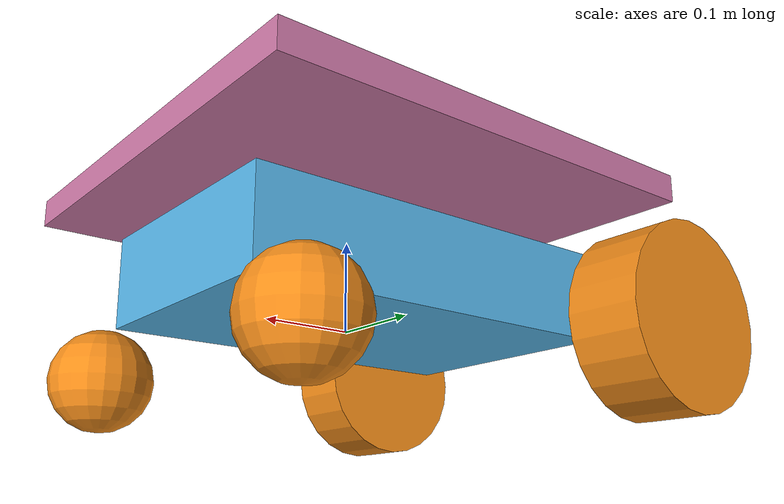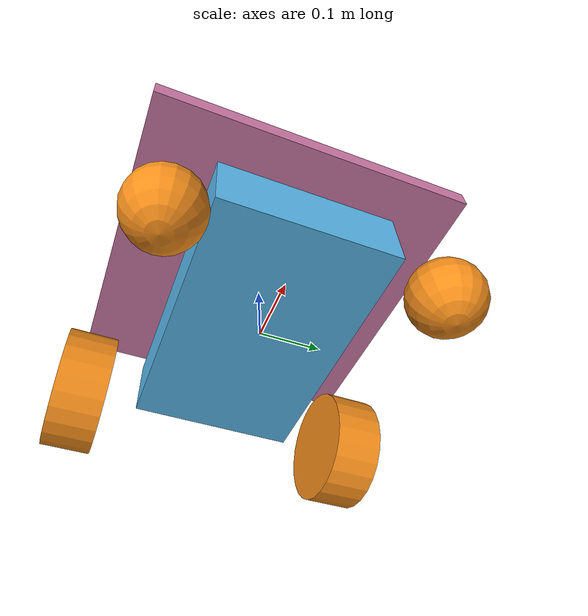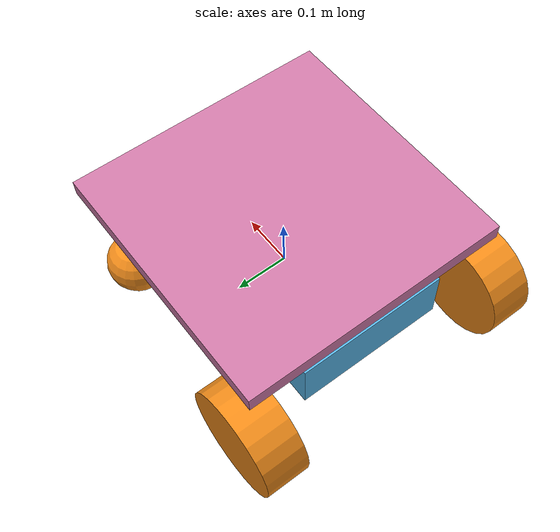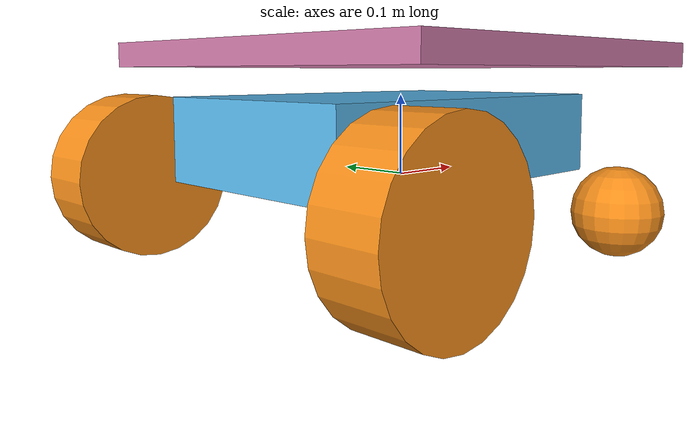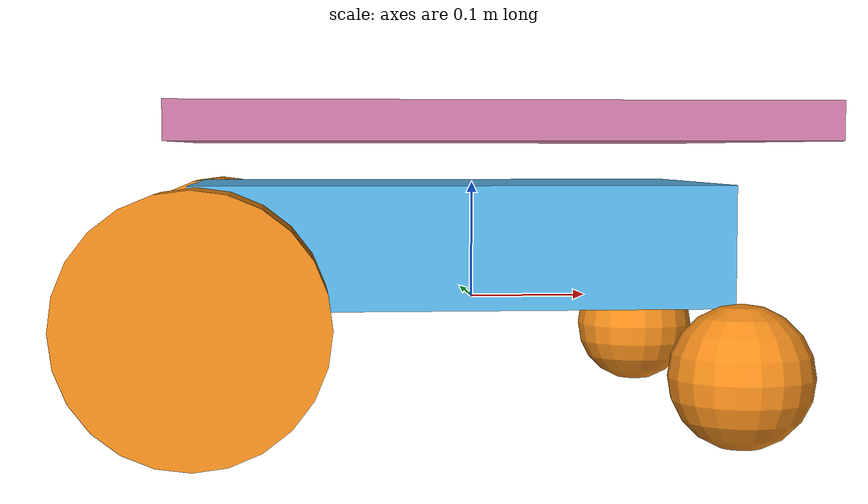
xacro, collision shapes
<?xml version="1.0" encoding="UTF-8"?>
<robot name="base_rover" xmlns:xacro="http://ros.org/wiki/xacro">
	<!--URDF uses SI Units: meters, radians and kilograms-->

	<!-- common constants -->
	<!--xacro:include filename="$(find rover_description)/urdf/common_properties.xacro"/-->

	<!-- add wheel xacro platform include files -->
	<xacro:include filename="$(find rover_description)/urdf/wheel.urdf.xacro"/>
	<xacro:include filename="$(find rover_description)/urdf/caster.urdf.xacro"/>
	<xacro:include filename="$(find rover_description)/urdf/ar_tag.urdf.xacro"/>

	<!-- Base -->
	<link name="base_footprint"/>

	<joint name="base_joint" type="fixed">
 		<parent link="base_footprint"/>
	   	<child link="base_cart_link"/>
	</joint>

	<link name="base_cart_link">
    	<visual>
      		<origin xyz="0 0 0" rpy="0 0 0"/>
      		<geometry>
        		<mesh 	filename="package://rover_description/meshes/base_cart.stl"
						scale="0.001 0.001 0.001"/>
			</geometry>
			<material name="dark"/>
    	</visual>
		<collision>
      		<origin xyz="-0.02 0 0.05" rpy="0 0 0"/>
      		<geometry>
        		<box size="0.44 0.28 0.10"/>
      		</geometry>
		</collision>
		<inertial>
      		<origin xyz="0 0 0" rpy="0 0 0"/>
      		<mass value="5"/> <!-- in kg -->
			<!-- M=20kg, x=0.5m, y=0.34m, z=0.1m-->
      		<inertia ixx="0.2093333" ixy="0.0" ixz="0.0" iyy="0.4333333" iyz="0.0" izz="0.6093333"/>
    	</inertial>
  	</link>

	<!-- front_wheel macros -->
    <xacro:front_wheel alignment="left" x_="-0.229" y_="-0.12" z_="0.0005" r_="-1.5707" p_="0" j_="0" off_="-0.12" f_="0.01" s_="1.0"  >
	</xacro:front_wheel>

    <xacro:front_wheel alignment="right" x_="-0.229" y_="0.12" z_="0.0005" r_="-1.5707" p_="0.0" j_="0.0" off_="0.12" f_="0.01" s_="1.0" >
	</xacro:front_wheel>

	<!-- Caster macros -->
    <xacro:caster alignment="left" x_="0.188" y_="-0.2" z_="-0.047" >
	</xacro:caster>

    <xacro:caster alignment="right" x_="0.188" y_="0.2" z_="-0.047" >
	</xacro:caster>

	<!-- ar_tag macros -->
    <xacro:ar_tag number_="5" x_="0.0" y_="0.0" z_="0.15" r_="0.0">
	</xacro:ar_tag>

	<!-- Gazebo simulation plugins -->
	<xacro:include filename="$(find rover_description)/urdf/base_rover.gazebo.xacro"/>

</robot>

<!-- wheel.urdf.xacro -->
<robot xmlns:xacro="http://ros.org/wiki/xacro" name="front_wheel">
	<xacro:macro name="front_wheel" params="alignment x_ y_ z_ r_ p_ j_ off_ f_ s_ ">
		<link name="wheel_${alignment}_link">
			<visual>
				<origin xyz="0 0 0" rpy="${r_} 0 0"/>
				<geometry>
					<mesh 	filename="package://rover_description/meshes/front_wheel_${alignment}.stl"
							scale="0.001 0.001 0.001"/>
				</geometry>
			</visual>
			<inertial>
				<origin xyz="0 ${off_} 0"/>
				<mass value="0.5" />
				<inertia ixx="0.000986875" ixy="0.0" ixz="0.0" iyy="0.000145375" iyz="0.0" izz="0.000986875" />
			</inertial>
			<collision>
				<origin xyz="0 ${off_} 0" rpy="${r_} 0 0"/>
				<geometry>
					<cylinder length="0.08" radius="0.1"/>
				</geometry>
			</collision>
		</link>

		<joint name="wheel_${alignment}_joint" type="continuous">
			<parent link="base_cart_link"/>
			<child link="wheel_${alignment}_link"/>
			<dynamics damping="0.0005" friction="0.00" /> <!-- can be set to the right values -->
			<!--limit upper="0.001"/--> <!-- set to correct values -->
			<axis xyz="0 -1 0"/>
			<origin xyz= "${x_} ${y_} ${z_}"/>
		</joint>

		<gazebo reference="wheel_${alignment}_link">
			<kp value="50000000.0" />
			<kd value="0.2" />
			<minDepth>0.001</minDepth>
			<maxVel>0.01</maxVel>
			<mu1 value="1.0"/>
			<mu2 value="1.0"/>
			<fdir1>1 0 0</fdir1>
			<material>Gazebo/Orange</material>
		</gazebo>
	</xacro:macro>
</robot>

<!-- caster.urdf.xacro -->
<robot xmlns:xacro="http://ros.org/wiki/xacro" name="caster_wheel">
	<xacro:macro name="caster" params="alignment x_ y_ z_">
		<link name="caster_${alignment}_link">
			<visual>
				<origin xyz="0 0 0" rpy="1.5707 0 0"/>
				<geometry>
					<cylinder length="0.01" radius="0.057"/>
				</geometry>
			</visual>

			<inertial>
				<origin xyz="0 0 0"/>
				<mass value="0.1" />
				<!-- M=3kg, h=0.08m, r=0.105m-->
				<inertia ixx="0.000986875" ixy="0.0" ixz="0.0" iyy="0.000145375" iyz="0.0" izz="0.000986875" />
			</inertial>

			<collision>
				<origin xyz="0 0 0" rpy="0 0 0"/>
				<geometry>
					<sphere radius="0.057"/>
				</geometry>
			</collision>
		</link>

		<joint name="caster_${alignment}_joint" type="continuous">
			<parent link="base_cart_link"/>
			<child link="caster_${alignment}_link"/>
			<axis xyz="0 -1 0"/>
			<dynamics damping="0.0005" friction="0.00" />
			<origin xyz= "${x_} ${y_} ${z_}"/>
		</joint>

		<gazebo reference="caster_${alignment}_link">
			<kp value="50000000.0" />
			<kd value="0.2" />
			<mu1 value="0.1"/>
			<mu2 value="0.1"/>
			<minDepth>0.001</minDepth>
			<maxVel>0.01</maxVel>
			<fdir1>1 0 0</fdir1>
			<material>Gazebo/Orange</material>
                        <selfCollide>false</selfCollide>
		</gazebo>
	</xacro:macro>
</robot>

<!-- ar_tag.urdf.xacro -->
<robot xmlns:xacro="http://ros.org/wiki/xacro" name="ar_tag">
	<xacro:macro name="ar_tag" params="number_ x_ y_ z_ r_">
		<link name="ar_tag_${number_}">
			<visual>
				<origin xyz="0 0 0" rpy="0 0 0"/>
				<geometry>
					<box size="0.5 0.5 0.03"/>
				</geometry>
			</visual>
			<inertial>
				<origin xyz="0 0 0"/>
				<mass value="0.001" />
				<inertia ixx="0.000001" ixy="0.0" ixz="0.0" iyy= "0.000001" iyz="0.0" izz="0.000001" />
			</inertial>
			<collision>
				<origin xyz="0 0 0" rpy="0 0 0"/>
				<geometry>
					<box size="0.5 0.5 0.03"/>
				</geometry>
			</collision>
		</link>

		<joint name="ar_tag_${number_}_joint" type="fixed">
			<parent link="base_cart_link"/>
			<child link="ar_tag_${number_}"/>
			<origin xyz= "${x_} ${y_} ${z_}" rpy="0.0 ${r_} 0.0"/>
		</joint>

		<gazebo reference="ar_tag_${number_}">
			<kp value="50000000.0" />
			<kd value="0.2" />
			<minDepth>0.001</minDepth>
			<material>ar_tag_13</material>
		</gazebo>
	</xacro:macro>
</robot>
